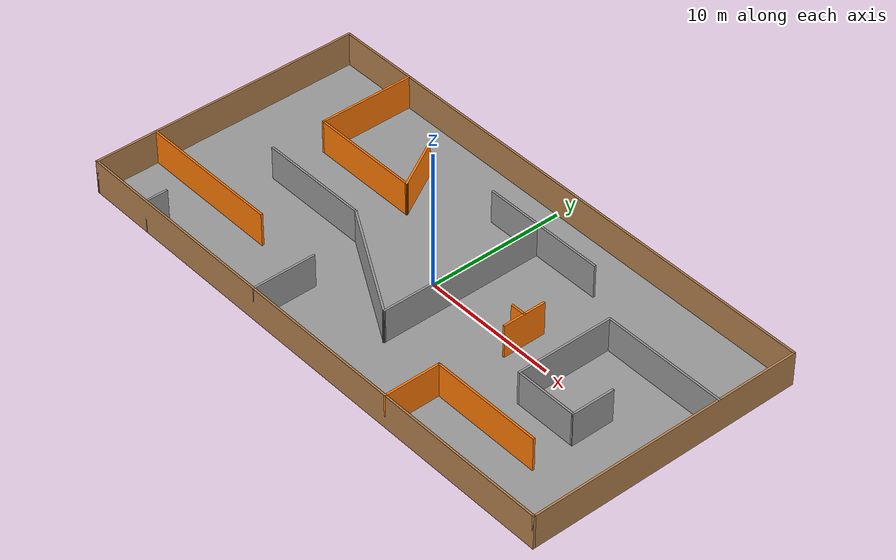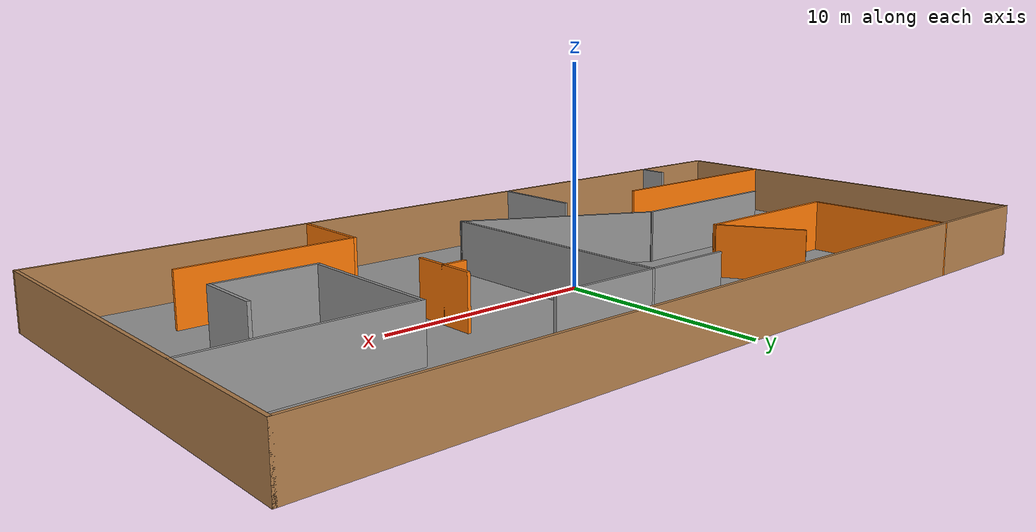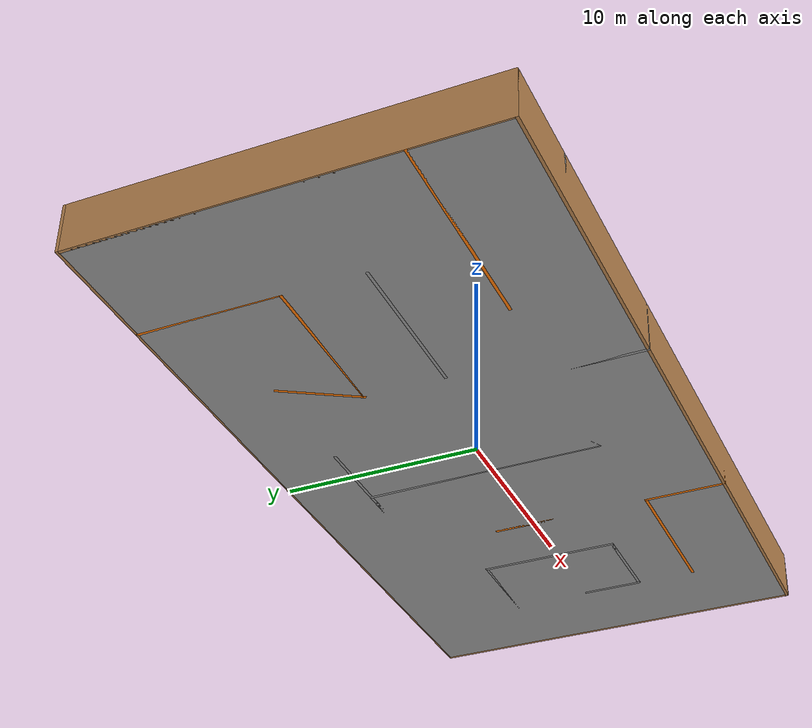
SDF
<?xml version='1.0'?>
<sdf version='1.7'>
  <model name='floorplan1'>
    <pose>0 0 0 0 -0 0</pose>
    <link name='Wall_0'>
      <collision name='Wall_0_Collision'>
        <geometry>
          <box>
            <size>20.15 0.15 2.5</size>
          </box>
        </geometry>
        <pose>0 0 1.25 0 -0 0</pose>
      </collision>
      <visual name='Wall_0_Visual'>
        <pose>0 0 1.25 0 -0 0</pose>
        <geometry>
          <box>
            <size>20.15 0.15 2.5</size>
          </box>
        </geometry>
        <material>
          <script>
            <uri>file://media/materials/scripts/gazebo.material</uri>
            <name>Gazebo/Wood</name>
          </script>
          <ambient>1 1 1 1</ambient>
        </material>
        <meta>
          <layer>0</layer>
        </meta>
      </visual>
      <pose>-20 0 0 0 -0 -1.5708</pose>
    </link>
    <link name='Wall_10'>
      <collision name='Wall_10_Collision'>
        <geometry>
          <box>
            <size>7.15 0.15 2.5</size>
          </box>
        </geometry>
        <pose>0 0 1.25 0 -0 0</pose>
      </collision>
      <visual name='Wall_10_Visual'>
        <pose>0 0 1.25 0 -0 0</pose>
        <geometry>
          <box>
            <size>7.15 0.15 2.5</size>
          </box>
        </geometry>
        <material>
          <script>
            <uri>file://media/materials/scripts/gazebo.material</uri>
            <name>Gazebo/Grey</name>
          </script>
          <ambient>0.996078 0.47451 0.0196078 1</ambient>
        </material>
        <meta>
          <layer>0</layer>
        </meta>
      </visual>
      <pose>-14 6.5 0 0 -0 1.5708</pose>
    </link>
    <link name='Wall_12'>
      <collision name='Wall_12_Collision'>
        <geometry>
          <box>
            <size>8.15 0.15 2.5</size>
          </box>
        </geometry>
        <pose>0 0 1.25 0 -0 0</pose>
      </collision>
      <visual name='Wall_12_Visual'>
        <pose>0 0 1.25 0 -0 0</pose>
        <geometry>
          <box>
            <size>8.15 0.15 2.5</size>
          </box>
        </geometry>
        <material>
          <script>
            <uri>file://media/materials/scripts/gazebo.material</uri>
            <name>Gazebo/Grey</name>
          </script>
          <ambient>0.996078 0.47451 0.0196078 1</ambient>
        </material>
        <meta>
          <layer>0</layer>
        </meta>
      </visual>
      <pose>-10 3 0 0 -0 0</pose>
    </link>
    <link name='Wall_14'>
      <collision name='Wall_14_Collision'>
        <geometry>
          <box>
            <size>4.18113 0.15 2.5</size>
          </box>
        </geometry>
        <pose>0 0 1.25 0 -0 0</pose>
      </collision>
      <visual name='Wall_14_Visual'>
        <pose>0 0 1.25 0 -0 0</pose>
        <geometry>
          <box>
            <size>4.18113 0.15 2.5</size>
          </box>
        </geometry>
        <material>
          <script>
            <uri>file://media/materials/scripts/gazebo.material</uri>
            <name>Gazebo/Grey</name>
          </script>
          <ambient>0.996078 0.47451 0.0196078 1</ambient>
        </material>
        <meta>
          <layer>0</layer>
        </meta>
      </visual>
      <pose>-7 4.75 0 0 -0 2.08994</pose>
    </link>
    <link name='Wall_16'>
      <collision name='Wall_16_Collision'>
        <geometry>
          <box>
            <size>10.65 0.15 2.5</size>
          </box>
        </geometry>
        <pose>0 0 1.25 0 -0 0</pose>
      </collision>
      <visual name='Wall_16_Visual'>
        <pose>0 0 1.25 0 -0 0</pose>
        <geometry>
          <box>
            <size>10.65 0.15 2.5</size>
          </box>
        </geometry>
        <material>
          <script>
            <uri>file://media/materials/scripts/gazebo.material</uri>
            <name>Gazebo/Grey</name>
          </script>
          <ambient>0.996078 0.47451 0.0196078 1</ambient>
        </material>
        <meta>
          <layer>0</layer>
        </meta>
      </visual>
      <pose>-14.75 -5.5 0 0 -0 0</pose>
    </link>
    <link name='Wall_19'>
      <collision name='Wall_19_Collision'>
        <geometry>
          <box>
            <size>1.65 0.15 2.5</size>
          </box>
        </geometry>
        <pose>0 0 1.25 0 -0 0</pose>
      </collision>
      <visual name='Wall_19_Visual'>
        <pose>0 0 1.25 0 -0 0</pose>
        <geometry>
          <box>
            <size>1.65 0.15 2.5</size>
          </box>
        </geometry>
        <material>
          <script>
            <uri>file://media/materials/scripts/gazebo.material</uri>
            <name>Gazebo/Grey</name>
          </script>
          <ambient>1 1 1 1</ambient>
        </material>
        <meta>
          <layer>0</layer>
        </meta>
      </visual>
      <pose>-15 -9.25 0 0 -0 1.5708</pose>
    </link>
    <link name='Wall_2'>
      <collision name='Wall_2_Collision'>
        <geometry>
          <box>
            <size>40.15 0.15 2.5</size>
          </box>
        </geometry>
        <pose>0 0 1.25 0 -0 0</pose>
      </collision>
      <visual name='Wall_2_Visual'>
        <pose>0 0 1.25 0 -0 0</pose>
        <geometry>
          <box>
            <size>40.15 0.15 2.5</size>
          </box>
        </geometry>
        <material>
          <script>
            <uri>file://media/materials/scripts/gazebo.material</uri>
            <name>Gazebo/Wood</name>
          </script>
          <ambient>1 1 1 1</ambient>
        </material>
        <meta>
          <layer>0</layer>
        </meta>
      </visual>
      <pose>0 -10 0 0 -0 0</pose>
    </link>
    <link name='Wall_21'>
      <collision name='Wall_21_Collision'>
        <geometry>
          <box>
            <size>8.15 0.15 2.5</size>
          </box>
        </geometry>
        <pose>0 0 1.25 0 -0 0</pose>
      </collision>
      <visual name='Wall_21_Visual'>
        <pose>0 0 1.25 0 -0 0</pose>
        <geometry>
          <box>
            <size>8.15 0.15 2.5</size>
          </box>
        </geometry>
        <material>
          <script>
            <uri>file://media/materials/scripts/gazebo.material</uri>
            <name>Gazebo/Grey</name>
          </script>
          <ambient>1 1 1 1</ambient>
        </material>
        <meta>
          <layer>0</layer>
        </meta>
      </visual>
      <pose>-10 -1 0 0 -0 0</pose>
    </link>
    <link name='Wall_22'>
      <collision name='Wall_22_Collision'>
        <geometry>
          <box>
            <size>9.32878 0.15 2.5</size>
          </box>
        </geometry>
        <pose>0 0 1.25 0 -0 0</pose>
      </collision>
      <visual name='Wall_22_Visual'>
        <pose>0 0 1.25 0 -0 0</pose>
        <geometry>
          <box>
            <size>9.32878 0.15 2.5</size>
          </box>
        </geometry>
        <material>
          <script>
            <uri>file://media/materials/scripts/gazebo.material</uri>
            <name>Gazebo/Grey</name>
          </script>
          <ambient>1 1 1 1</ambient>
        </material>
        <meta>
          <layer>0</layer>
        </meta>
      </visual>
      <pose>-2 -3.25 0 0 -0 -0.51239</pose>
    </link>
    <link name='Wall_23'>
      <collision name='Wall_23_Collision'>
        <geometry>
          <box>
            <size>12.15 0.15 2.5</size>
          </box>
        </geometry>
        <pose>0 0 1.25 0 -0 0</pose>
      </collision>
      <visual name='Wall_23_Visual'>
        <pose>0 0 1.25 0 -0 0</pose>
        <geometry>
          <box>
            <size>12.15 0.15 2.5</size>
          </box>
        </geometry>
        <material>
          <script>
            <uri>file://media/materials/scripts/gazebo.material</uri>
            <name>Gazebo/Grey</name>
          </script>
          <ambient>1 1 1 1</ambient>
        </material>
        <meta>
          <layer>0</layer>
        </meta>
      </visual>
      <pose>2 0.5 0 0 -0 1.5708</pose>
    </link>
    <link name='Wall_25'>
      <collision name='Wall_25_Collision'>
        <geometry>
          <box>
            <size>9.15 0.15 2.5</size>
          </box>
        </geometry>
        <pose>0 0 1.25 0 -0 0</pose>
      </collision>
      <visual name='Wall_25_Visual'>
        <pose>0 0 1.25 0 -0 0</pose>
        <geometry>
          <box>
            <size>9.15 0.15 2.5</size>
          </box>
        </geometry>
        <material>
          <script>
            <uri>file://media/materials/scripts/gazebo.material</uri>
            <name>Gazebo/Grey</name>
          </script>
          <ambient>1 1 1 1</ambient>
        </material>
        <meta>
          <layer>0</layer>
        </meta>
      </visual>
      <pose>2.5 6.5 0 0 -0 0</pose>
    </link>
    <link name='Wall_27'>
      <collision name='Wall_27_Collision'>
        <geometry>
          <box>
            <size>9.15 0.15 2.5</size>
          </box>
        </geometry>
        <pose>0 0 1.25 0 -0 0</pose>
      </collision>
      <visual name='Wall_27_Visual'>
        <pose>0 0 1.25 0 -0 0</pose>
        <geometry>
          <box>
            <size>9.15 0.15 2.5</size>
          </box>
        </geometry>
        <material>
          <script>
            <uri>file://media/materials/scripts/gazebo.material</uri>
            <name>Gazebo/Grey</name>
          </script>
          <ambient>1 1 1 1</ambient>
        </material>
        <meta>
          <layer>0</layer>
        </meta>
      </visual>
      <pose>15.5 4 0 0 -0 3.14159</pose>
    </link>
    <link name='Wall_28'>
      <collision name='Wall_28_Collision'>
        <geometry>
          <box>
            <size>7.15 0.15 2.5</size>
          </box>
        </geometry>
        <pose>0 0 1.25 0 -0 0</pose>
      </collision>
      <visual name='Wall_28_Visual'>
        <pose>0 0 1.25 0 -0 0</pose>
        <geometry>
          <box>
            <size>7.15 0.15 2.5</size>
          </box>
        </geometry>
        <material>
          <script>
            <uri>file://media/materials/scripts/gazebo.material</uri>
            <name>Gazebo/Grey</name>
          </script>
          <ambient>1 1 1 1</ambient>
        </material>
        <meta>
          <layer>0</layer>
        </meta>
      </visual>
      <pose>11 0.5 0 0 -0 -1.5708</pose>
    </link>
    <link name='Wall_29'>
      <collision name='Wall_29_Collision'>
        <geometry>
          <box>
            <size>4.65 0.15 2.5</size>
          </box>
        </geometry>
        <pose>0 0 1.25 0 -0 0</pose>
      </collision>
      <visual name='Wall_29_Visual'>
        <pose>0 0 1.25 0 -0 0</pose>
        <geometry>
          <box>
            <size>4.65 0.15 2.5</size>
          </box>
        </geometry>
        <material>
          <script>
            <uri>file://media/materials/scripts/gazebo.material</uri>
            <name>Gazebo/Grey</name>
          </script>
          <ambient>1 1 1 1</ambient>
        </material>
        <meta>
          <layer>0</layer>
        </meta>
      </visual>
      <pose>13.25 -3 0 0 -0 0</pose>
    </link>
    <link name='Wall_30'>
      <collision name='Wall_30_Collision'>
        <geometry>
          <box>
            <size>3.15 0.15 2.5</size>
          </box>
        </geometry>
        <pose>0 0 1.25 0 -0 0</pose>
      </collision>
      <visual name='Wall_30_Visual'>
        <pose>0 0 1.25 0 -0 0</pose>
        <geometry>
          <box>
            <size>3.15 0.15 2.5</size>
          </box>
        </geometry>
        <material>
          <script>
            <uri>file://media/materials/scripts/gazebo.material</uri>
            <name>Gazebo/Grey</name>
          </script>
          <ambient>1 1 1 1</ambient>
        </material>
        <meta>
          <layer>0</layer>
        </meta>
      </visual>
      <pose>15.5 -1.5 0 0 -0 1.5708</pose>
    </link>
    <link name='Wall_35'>
      <collision name='Wall_35_Collision'>
        <geometry>
          <box>
            <size>4.15 0.15 2.5</size>
          </box>
        </geometry>
        <pose>0 0 1.25 0 -0 0</pose>
      </collision>
      <visual name='Wall_35_Visual'>
        <pose>0 0 1.25 0 -0 0</pose>
        <geometry>
          <box>
            <size>4.15 0.15 2.5</size>
          </box>
        </geometry>
        <material>
          <script>
            <uri>file://media/materials/scripts/gazebo.material</uri>
            <name>Gazebo/Grey</name>
          </script>
          <ambient>0.996078 0.47451 0.0196078 1</ambient>
        </material>
        <meta>
          <layer>0</layer>
        </meta>
      </visual>
      <pose>7.5 -8 0 0 -0 1.5708</pose>
    </link>
    <link name='Wall_36'>
      <collision name='Wall_36_Collision'>
        <geometry>
          <box>
            <size>8.15 0.15 2.5</size>
          </box>
        </geometry>
        <pose>0 0 1.25 0 -0 0</pose>
      </collision>
      <visual name='Wall_36_Visual'>
        <pose>0 0 1.25 0 -0 0</pose>
        <geometry>
          <box>
            <size>8.15 0.15 2.5</size>
          </box>
        </geometry>
        <material>
          <script>
            <uri>file://media/materials/scripts/gazebo.material</uri>
            <name>Gazebo/Grey</name>
          </script>
          <ambient>0.996078 0.47451 0.0196078 1</ambient>
        </material>
        <meta>
          <layer>0</layer>
        </meta>
      </visual>
      <pose>11.5 -6 0 0 -0 0</pose>
    </link>
    <link name='Wall_39'>
      <collision name='Wall_39_Collision'>
        <geometry>
          <box>
            <size>4.65 0.15 2.5</size>
          </box>
        </geometry>
        <pose>0 0 1.25 0 -0 0</pose>
      </collision>
      <visual name='Wall_39_Visual'>
        <pose>0 0 1.25 0 -0 0</pose>
        <geometry>
          <box>
            <size>4.65 0.15 2.5</size>
          </box>
        </geometry>
        <material>
          <script>
            <uri>file://media/materials/scripts/gazebo.material</uri>
            <name>Gazebo/Grey</name>
          </script>
          <ambient>1 1 1 1</ambient>
        </material>
        <meta>
          <layer>0</layer>
        </meta>
      </visual>
      <pose>-4.5 -7.75 0 0 -0 1.5708</pose>
    </link>
    <link name='Wall_4'>
      <collision name='Wall_4_Collision'>
        <geometry>
          <box>
            <size>40.15 0.15 2.5</size>
          </box>
        </geometry>
        <pose>0 0 1.25 0 -0 0</pose>
      </collision>
      <visual name='Wall_4_Visual'>
        <pose>0 0 1.25 0 -0 0</pose>
        <geometry>
          <box>
            <size>40.15 0.15 2.5</size>
          </box>
        </geometry>
        <material>
          <script>
            <uri>file://media/materials/scripts/gazebo.material</uri>
            <name>Gazebo/Wood</name>
          </script>
          <ambient>1 1 1 1</ambient>
        </material>
        <meta>
          <layer>0</layer>
        </meta>
      </visual>
      <pose>0 10 0 0 -0 0</pose>
    </link>
    <link name='Wall_41'>
      <collision name='Wall_41_Collision'>
        <geometry>
          <box>
            <size>1.15 0.15 2.5</size>
          </box>
        </geometry>
        <pose>0 0 1.25 0 -0 0</pose>
      </collision>
      <visual name='Wall_41_Visual'>
        <pose>0 0 1.25 0 -0 0</pose>
        <geometry>
          <box>
            <size>1.15 0.15 2.5</size>
          </box>
        </geometry>
        <material>
          <script>
            <uri>file://media/materials/scripts/gazebo.material</uri>
            <name>Gazebo/Grey</name>
          </script>
          <ambient>0.996078 0.47451 0.0196078 1</ambient>
        </material>
        <meta>
          <layer>0</layer>
        </meta>
      </visual>
      <pose>7 0.5 0 0 -0 3.14159</pose>
    </link>
    <link name='Wall_43'>
      <collision name='Wall_43_Collision'>
        <geometry>
          <box>
            <size>3.15 0.15 2.5</size>
          </box>
        </geometry>
        <pose>0 0 1.25 0 -0 0</pose>
      </collision>
      <visual name='Wall_43_Visual'>
        <pose>0 0 1.25 0 -0 0</pose>
        <geometry>
          <box>
            <size>3.15 0.15 2.5</size>
          </box>
        </geometry>
        <material>
          <script>
            <uri>file://media/materials/scripts/gazebo.material</uri>
            <name>Gazebo/Grey</name>
          </script>
          <ambient>0.996078 0.47451 0.0196078 1</ambient>
        </material>
        <meta>
          <layer>0</layer>
        </meta>
      </visual>
      <pose>7.5 0.5 0 0 -0 -1.5708</pose>
    </link>
    <link name='Wall_45'>
      <collision name='Wall_45_Collision'>
        <geometry>
          <box>
            <size>40 20 0.05</size>
          </box>
        </geometry>
        <pose>0 0 0.025 0 -0 0</pose>
      </collision>
      <visual name='Wall_45_Visual'>
        <pose>0 0 0.025 0 -0 0</pose>
        <geometry>
          <box>
            <size>40 20 0.05</size>
          </box>
        </geometry>
        <material>
          <script>
            <uri>file://media/materials/scripts/gazebo.material</uri>
            <name>Gazebo/Grey</name>
          </script>
          <ambient>0.180392 0.203922 0.211765 1</ambient>
        </material>
        <meta>
          <layer>0</layer>
        </meta>
      </visual>
      <pose>0 0 0 0 -0 0</pose>
    </link>
    <link name='Wall_6'>
      <collision name='Wall_6_Collision'>
        <geometry>
          <box>
            <size>20.15 0.15 2.5</size>
          </box>
        </geometry>
        <pose>0 0 1.25 0 -0 0</pose>
      </collision>
      <visual name='Wall_6_Visual'>
        <pose>0 0 1.25 0 -0 0</pose>
        <geometry>
          <box>
            <size>20.15 0.15 2.5</size>
          </box>
        </geometry>
        <material>
          <script>
            <uri>file://media/materials/scripts/gazebo.material</uri>
            <name>Gazebo/Wood</name>
          </script>
          <ambient>1 1 1 1</ambient>
        </material>
        <meta>
          <layer>0</layer>
        </meta>
      </visual>
      <pose>20 0 0 0 -0 -1.5708</pose>
    </link>
    <static>1</static>
  </model>
</sdf>
